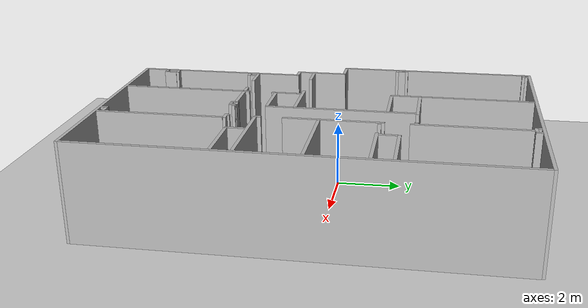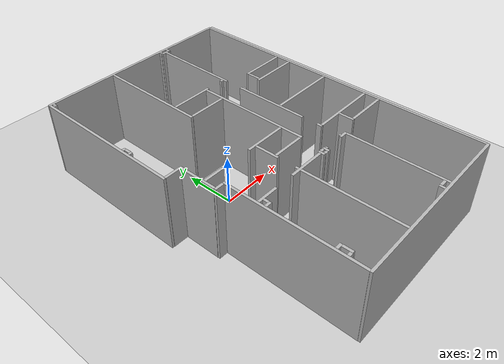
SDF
<sdf version="1.6">
 <world name="default">
  <light name="sun" type="directional">
   <pose>0 0 10 0 -0 0</pose>
   <diffuse>0.8 0.8 0.8 1</diffuse>
   <specular>0.2 0.2 0.2 1</specular>
   <attenuation>
    <range>1000</range>
    <constant>0.9</constant>
    <linear>0.01</linear>
    <quadratic>0.001</quadratic>
   </attenuation>
   <direction>-0.5 0.1 -0.9</direction>
  </light>
  <model name="ground_plane">
   <static>1</static>
   <link name="link">
    <collision name="collision">
     <geometry><plane><normal>0 0 1</normal><size>100 100</size></plane></geometry>
     <surface><friction><ode><mu>100</mu><mu2>50</mu2></ode></friction></surface>
    </collision>
    <visual name="visual">
     <cast_shadows>0</cast_shadows>
     <geometry><plane><normal>0 0 1</normal><size>100 100</size></plane></geometry>
     <material>
      <script><uri>file://media/materials/scripts/gazebo.material</uri><name>Gazebo/Grey</name></script>
     </material>
    </visual>
    <velocity_decay><linear>0</linear><angular>0</angular></velocity_decay>
   </link>
  </model>
  <include><uri>model://complete_mp_model</uri><pose>0 6 0 0 0 0</pose></include>
  <physics name="default_physics" default="0" type="ode">
   <max_step_size>0.01</max_step_size>
   <real_time_factor>1</real_time_factor>
   <real_time_update_rate>100</real_time_update_rate>
  </physics>
  <scene><ambient>0.4 0.4 0.4 1</ambient><background>0.7 0.7 0.7 1</background><shadows>1</shadows></scene>
  <gravity>0 0 -9.8</gravity>
  <magnetic_field>6e-06 2.3e-05 -4.2e-05</magnetic_field>
  <atmosphere type="adiabatic"/>
  <spherical_coordinates>
   <surface_model>EARTH_WGS84</surface_model>
   <latitude_deg>0</latitude_deg>
   <longitude_deg>0</longitude_deg>
   <elevation>0</elevation>
   <heading_deg>0</heading_deg>
  </spherical_coordinates>
 </world>
</sdf>

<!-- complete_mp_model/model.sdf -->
<sdf version='1.6'>
  <model name='complete_mp_model'>
    <link name='building_footprint'>
      <pose frame=''>0 0 0 0 -0 0</pose>
      <inertial>
        <pose frame=''>1.12721 -5.42171 0.338508 0 -0 0</pose>
        <mass>244</mass>
        <inertia>
          <ixx>1142.81</ixx>
          <ixy>-243.459</ixy>
          <ixz>23.0829</ixz>
          <iyy>742.682</iyy>
          <iyz>104.008</iyz>
          <izz>1644.27</izz>
        </inertia>
      </inertial>
      <collision name='building_footprint_fixed_joint_lump__Wall_0_Collision_collision'>
        <pose frame=''>-0.032085 -2.20086 1.524 0 0 -1.5708</pose>
        <geometry>
          <box>
            <size>4.36829 0.1015 3.048</size>
          </box>
        </geometry>
      </collision>
      <collision name='building_footprint_fixed_joint_lump__Wall_10_Collision_collision_1'>
        <pose frame=''>1.73042 -12.8567 1.524 0 -0 3.14159</pose>
        <geometry>
          <box>
            <size>7.155 0.1015 3.048</size>
          </box>
        </geometry>
      </collision>
      <collision name='building_footprint_fixed_joint_lump__Wall_11_Collision_collision_2'>
        <pose frame=''>-2.86708 -3.07444 1.524 0 0 -1.5708</pose>
        <geometry>
          <box>
            <size>6.11546 0.1015 3.048</size>
          </box>
        </geometry>
      </collision>
      <collision name='building_footprint_fixed_joint_lump__Wall_12_Collision_collision_3'>
        <pose frame=''>2.67107 -0.121714 1.524 0 0 -1.5708</pose>
        <geometry>
          <box>
            <size>0.21 0.1015 3.048</size>
          </box>
        </geometry>
      </collision>
      <collision name='building_footprint_fixed_joint_lump__Wall_13_Collision_collision_4'>
        <pose frame=''>-2.02697 -7.61717 1.524 0 -0 3.14159</pose>
        <geometry>
          <box>
            <size>0.36 0.1015 3.048</size>
          </box>
        </geometry>
      </collision>
      <collision name='building_footprint_fixed_joint_lump__Wall_14_Collision_collision_5'>
        <pose frame=''>-2.16697 -6.81467 1.524 0 -0 1.5708</pose>
        <geometry>
          <box>
            <size>1.525 0.1015 3.048</size>
          </box>
        </geometry>
      </collision>
      <collision name='building_footprint_fixed_joint_lump__Wall_15_Collision_collision_6'>
        <pose frame=''>-2.51703 -6.09217 1.524 0 -0 3.14159</pose>
        <geometry>
          <box>
            <size>0.620118 0.1015 3.048</size>
          </box>
        </geometry>
      </collision>
      <collision name='building_footprint_fixed_joint_lump__Wall_16_Collision_collision_7'>
        <pose frame=''>-1.72697 -7.10717 1.524 0 -0 0</pose>
        <geometry>
          <box>
            <size>0.8 0.1015 3.048</size>
          </box>
        </geometry>
      </collision>
      <collision name='building_footprint_fixed_joint_lump__Wall_17_Collision_collision_8'>
        <pose frame=''>0.708089 -7.10814 1.524 0 -0 0</pose>
        <geometry>
          <box>
            <size>1.6314 0.1015 3.048</size>
          </box>
        </geometry>
      </collision>
      <collision name='building_footprint_fixed_joint_lump__Wall_18_Collision_collision_9'>
        <pose frame=''>0.203786 -7.61814 1.524 0 0 -1.5708</pose>
        <geometry>
          <box>
            <size>0.94 0.1015 3.048</size>
          </box>
        </geometry>
      </collision>
      <collision name='building_footprint_fixed_joint_lump__Wall_19_Collision_collision_10'>
        <pose frame=''>0.883786 -7.95418 1.524 0 -0 3.14159</pose>
        <geometry>
          <box>
            <size>1.28 0.1015 3.048</size>
          </box>
        </geometry>
      </collision>
      <collision name='building_footprint_fixed_joint_lump__Wall_1_Collision_collision_11'>
        <pose frame=''>-1.80697 -10.1969 1.524 0 -0 1.5708</pose>
        <geometry>
          <box>
            <size>5.23954 0.1015 3.048</size>
          </box>
        </geometry>
      </collision>
      <collision name='building_footprint_fixed_joint_lump__Wall_20_Collision_collision_12'>
        <pose frame=''>2.51258 -5.82869 1.524 0 0 -1.5708</pose>
        <geometry>
          <box>
            <size>2.94 0.1015 3.048</size>
          </box>
        </geometry>
      </collision>
      <collision name='building_footprint_fixed_joint_lump__Wall_21_Collision_collision_13'>
        <pose frame=''>3.89025 -6.23869 1.524 0 -0 3.14159</pose>
        <geometry>
          <box>
            <size>2.67534 0.1015 3.048</size>
          </box>
        </geometry>
      </collision>
      <collision name='building_footprint_fixed_joint_lump__Wall_22_Collision_collision_14'>
        <pose frame=''>2.59508 -4.50369 1.524 0 -0 0</pose>
        <geometry>
          <box>
            <size>0.085 0.1015 3.048</size>
          </box>
        </geometry>
      </collision>
      <collision name='building_footprint_fixed_joint_lump__Wall_23_Collision_collision_15'>
        <pose frame=''>4.29108 -4.50455 1.524 0 -0 0</pose>
        <geometry>
          <box>
            <size>1.87367 0.1015 3.048</size>
          </box>
        </geometry>
      </collision>
      <collision name='building_footprint_fixed_joint_lump__Wall_24_Collision_collision_16'>
        <pose frame=''>4.33025 -3.885 1.524 0 -0 3.14159</pose>
        <geometry>
          <box>
            <size>1.79534 0.1015 3.048</size>
          </box>
        </geometry>
      </collision>
      <collision name='building_footprint_fixed_joint_lump__Wall_25_Collision_collision_17'>
        <pose frame=''>3.47258 -4.19478 1.524 0 0 -1.5708</pose>
        <geometry>
          <box>
            <size>0.539551 0.1015 3.048</size>
          </box>
        </geometry>
      </collision>
      <collision name='building_footprint_fixed_joint_lump__Wall_26_Collision_collision_18'>
        <pose frame=''>3.89302 -8.08548 1.524 0 -0 0</pose>
        <geometry>
          <box>
            <size>2.66978 0.1015 3.048</size>
          </box>
        </geometry>
      </collision>
      <collision name='building_footprint_fixed_joint_lump__Wall_27_Collision_collision_19'>
        <pose frame=''>2.51813 -8.02094 1.524 0 0 -1.5708</pose>
        <geometry>
          <box>
            <size>0.209072 0.1015 3.048</size>
          </box>
        </geometry>
      </collision>
      <collision name='building_footprint_fixed_joint_lump__Wall_28_Collision_collision_20'>
        <pose frame=''>3.54313 -8.42798 1.524 0 0 -1.5708</pose>
        <geometry>
          <box>
            <size>0.605 0.1015 3.048</size>
          </box>
        </geometry>
      </collision>
      <collision name='building_footprint_fixed_joint_lump__Wall_29_Collision_collision_21'>
        <pose frame=''>4.40552 -8.69048 1.524 0 -0 0</pose>
        <geometry>
          <box>
            <size>1.64478 0.1015 3.048</size>
          </box>
        </geometry>
      </collision>
      <collision name='building_footprint_fixed_joint_lump__Wall_2_Collision_collision_22'>
        <pose frame=''>0.765851 -4.345 1.524 0 -0 0</pose>
        <geometry>
          <box>
            <size>1.51587 0.1015 3.048</size>
          </box>
        </geometry>
      </collision>
      <collision name='building_footprint_fixed_joint_lump__Wall_30_Collision_collision_23'>
        <pose frame=''>-2.73708 -0.066714 1.524 0 0 -1.5708</pose>
        <geometry>
          <box>
            <size>0.1 0.1015 3.048</size>
          </box>
        </geometry>
      </collision>
      <collision name='building_footprint_fixed_joint_lump__Wall_31_Collision_collision_24'>
        <pose frame=''>-2.76208 -0.156714 1.524 0 -0 3.14159</pose>
        <geometry>
          <box>
            <size>0.13 0.1015 3.048</size>
          </box>
        </geometry>
      </collision>
      <collision name='building_footprint_fixed_joint_lump__Wall_32_Collision_collision_25'>
        <pose frame=''>-2.75708 -4.035 1.524 0 -0 0</pose>
        <geometry>
          <box>
            <size>0.14 0.1015 3.048</size>
          </box>
        </geometry>
      </collision>
      <collision name='building_footprint_fixed_joint_lump__Wall_33_Collision_collision_26'>
        <pose frame=''>-2.75708 -4.345 1.524 0 -0 0</pose>
        <geometry>
          <box>
            <size>0.14 0.1015 3.048</size>
          </box>
        </geometry>
      </collision>
      <collision name='building_footprint_fixed_joint_lump__Wall_34_Collision_collision_27'>
        <pose frame=''>-2.72708 -4.19 1.524 0 -0 1.5708</pose>
        <geometry>
          <box>
            <size>0.23 0.1015 3.048</size>
          </box>
        </geometry>
      </collision>
      <collision name='building_footprint_fixed_joint_lump__Wall_35_Collision_collision_28'>
        <pose frame=''>-1.34697 -8.95048 1.524 0 -0 0</pose>
        <geometry>
          <box>
            <size>0.84 0.1015 3.048</size>
          </box>
        </geometry>
      </collision>
      <collision name='building_footprint_fixed_joint_lump__Wall_36_Collision_collision_29'>
        <pose frame=''>-1.57197 -9.09048 1.524 0 0 -1.5708</pose>
        <geometry>
          <box>
            <size>0.2 0.1015 3.048</size>
          </box>
        </geometry>
      </collision>
      <collision name='building_footprint_fixed_joint_lump__Wall_37_Collision_collision_30'>
        <pose frame=''>-1.64947 -9.23048 1.524 0 -0 3.14159</pose>
        <geometry>
          <box>
            <size>0.235 0.1015 3.048</size>
          </box>
        </geometry>
      </collision>
      <collision name='building_footprint_fixed_joint_lump__Wall_38_Collision_collision_31'>
        <pose frame=''>0.542994 -8.96048 1.524 0 -0 0</pose>
        <geometry>
          <box>
            <size>1.45992 0.1015 3.048</size>
          </box>
        </geometry>
      </collision>
      <collision name='building_footprint_fixed_joint_lump__Wall_39_Collision_collision_32'>
        <pose frame=''>0.201972 -10.8063 1.524 0 0 -1.5708</pose>
        <geometry>
          <box>
            <size>4.02075 0.1015 3.048</size>
          </box>
        </geometry>
      </collision>
      <collision name='building_footprint_fixed_joint_lump__Wall_3_Collision_collision_33'>
        <pose frame=''>1.56379 -5.75418 1.524 0 0 -1.5708</pose>
        <geometry>
          <box>
            <size>4.48 0.1015 3.048</size>
          </box>
        </geometry>
      </collision>
      <collision name='building_footprint_fixed_joint_lump__Wall_40_Collision_collision_34'>
        <pose frame=''>1.31295 -8.99429 1.524 0 0 -1.5708</pose>
        <geometry>
          <box>
            <size>0.24 0.1015 3.048</size>
          </box>
        </geometry>
      </collision>
      <collision name='building_footprint_fixed_joint_lump__Wall_41_Collision_collision_35'>
        <pose frame=''>1.43545 -9.07429 1.524 0 -0 0</pose>
        <geometry>
          <box>
            <size>0.165 0.1015 3.048</size>
          </box>
        </geometry>
      </collision>
      <collision name='building_footprint_fixed_joint_lump__Wall_42_Collision_collision_36'>
        <pose frame=''>1.43545 -8.91429 1.524 0 -0 0</pose>
        <geometry>
          <box>
            <size>0.165 0.1015 3.048</size>
          </box>
        </geometry>
      </collision>
      <collision name='building_footprint_fixed_joint_lump__Wall_43_Collision_collision_37'>
        <pose frame=''>1.55795 -8.99429 1.524 0 -0 1.5708</pose>
        <geometry>
          <box>
            <size>0.24 0.1015 3.048</size>
          </box>
        </geometry>
      </collision>
      <collision name='building_footprint_fixed_joint_lump__Wall_44_Collision_collision_38'>
        <pose frame=''>1.64045 -8.95429 1.524 0 -0 0</pose>
        <geometry>
          <box>
            <size>0.085 0.1015 3.048</size>
          </box>
        </geometry>
      </collision>
      <collision name='building_footprint_fixed_joint_lump__Wall_45_Collision_collision_39'>
        <pose frame=''>2.58795 -8.95429 1.524 0 -0 0</pose>
        <geometry>
          <box>
            <size>0.34 0.1015 3.048</size>
          </box>
        </geometry>
      </collision>
      <collision name='building_footprint_fixed_joint_lump__Wall_46_Collision_collision_40'>
        <pose frame=''>2.51765 -8.87871 1.524 0 0 -1.5708</pose>
        <geometry>
          <box>
            <size>0.071155 0.1015 3.048</size>
          </box>
        </geometry>
      </collision>
      <collision name='building_footprint_fixed_joint_lump__Wall_47_Collision_collision_41'>
        <pose frame=''>2.71765 -10.9055 1.524 0 0 -1.5708</pose>
        <geometry>
          <box>
            <size>3.82243 0.1015 3.048</size>
          </box>
        </geometry>
      </collision>
      <collision name='building_footprint_fixed_joint_lump__Wall_48_Collision_collision_42'>
        <pose frame=''>2.36067 -12.7051 1.524 0 0 -1.5708</pose>
        <geometry>
          <box>
            <size>0.22317 0.1015 3.048</size>
          </box>
        </geometry>
      </collision>
      <collision name='building_footprint_fixed_joint_lump__Wall_49_Collision_collision_43'>
        <pose frame=''>2.53916 -12.6335 1.524 0 -0 0</pose>
        <geometry>
          <box>
            <size>0.276981 0.1015 3.048</size>
          </box>
        </geometry>
      </collision>
      <collision name='building_footprint_fixed_joint_lump__Wall_4_Collision_collision_44'>
        <pose frame=''>2.41107 -3.47418 1.524 0 -0 0</pose>
        <geometry>
          <box>
            <size>0.12 0.1015 3.048</size>
          </box>
        </geometry>
      </collision>
      <collision name='building_footprint_fixed_joint_lump__Wall_50_Collision_collision_45'>
        <pose frame=''>-1.64697 -11.7135 1.524 0 -0 0</pose>
        <geometry>
          <box>
            <size>0.24 0.1015 3.048</size>
          </box>
        </geometry>
      </collision>
      <collision name='building_footprint_fixed_joint_lump__Wall_51_Collision_collision_46'>
        <pose frame=''>-1.56697 -11.9485 1.524 0 0 -1.5708</pose>
        <geometry>
          <box>
            <size>0.39 0.1015 3.048</size>
          </box>
        </geometry>
      </collision>
      <collision name='building_footprint_fixed_joint_lump__Wall_52_Collision_collision_47'>
        <pose frame=''>-1.68697 -12.1035 1.524 0 -0 3.14159</pose>
        <geometry>
          <box>
            <size>0.16 0.1015 3.048</size>
          </box>
        </geometry>
      </collision>
      <collision name='building_footprint_fixed_joint_lump__Wall_54_Collision_collision_48'>
        <pose frame=''>0.844493 -3.47418 1.524 0 -0 0</pose>
        <geometry>
          <box>
            <size>1.67315 0.1015 3.048</size>
          </box>
        </geometry>
      </collision>
      <collision name='building_footprint_fixed_joint_lump__Wall_5_Collision_collision_49'>
        <pose frame=''>2.51107 -1.93921 1.524 0 0 -1.5708</pose>
        <geometry>
          <box>
            <size>3.425 0.1015 3.048</size>
          </box>
        </geometry>
      </collision>
      <collision name='building_footprint_fixed_joint_lump__Wall_6_Collision_collision_50'>
        <pose frame=''>2.47357 -0.186714 1.524 0 -0 3.14159</pose>
        <geometry>
          <box>
            <size>0.315 0.1015 3.048</size>
          </box>
        </geometry>
      </collision>
      <collision name='building_footprint_fixed_joint_lump__Wall_7_Collision_collision_51'>
        <pose frame=''>2.35607 -0.081714 1.524 0 -0 1.5708</pose>
        <geometry>
          <box>
            <size>0.13 0.1015 3.048</size>
          </box>
        </geometry>
      </collision>
      <collision name='building_footprint_fixed_joint_lump__Wall_8_Collision_collision_52'>
        <pose frame=''>1.20042 0.023286 1.524 0 -0 0</pose>
        <geometry>
          <box>
            <size>8.215 0.1015 3.048</size>
          </box>
        </geometry>
      </collision>
      <collision name='building_footprint_fixed_joint_lump__Wall_9_Collision_collision_53'>
        <pose frame=''>5.26792 -6.41671 1.524 0 0 -1.5708</pose>
        <geometry>
          <box>
            <size>12.8 0.1015 3.048</size>
          </box>
        </geometry>
      </collision>
      <visual name='building_footprint_fixed_joint_lump__Wall_0_Visual_visual'>
        <pose frame=''>-0.032085 -2.20086 1.524 0 0 -1.5708</pose>
        <geometry>
          <box>
            <size>4.36829 0.1015 3.048</size>
          </box>
        </geometry>
      </visual>
      <visual name='building_footprint_fixed_joint_lump__Wall_10_Visual_visual_1'>
        <pose frame=''>1.73042 -12.8567 1.524 0 -0 3.14159</pose>
        <geometry>
          <box>
            <size>7.155 0.1015 3.048</size>
          </box>
        </geometry>
      </visual>
      <visual name='building_footprint_fixed_joint_lump__Wall_11_Visual_visual_2'>
        <pose frame=''>-2.86708 -3.07444 1.524 0 0 -1.5708</pose>
        <geometry>
          <box>
            <size>6.11546 0.1015 3.048</size>
          </box>
        </geometry>
      </visual>
      <visual name='building_footprint_fixed_joint_lump__Wall_12_Visual_visual_3'>
        <pose frame=''>2.67107 -0.121714 1.524 0 0 -1.5708</pose>
        <geometry>
          <box>
            <size>0.21 0.1015 3.048</size>
          </box>
        </geometry>
      </visual>
      <visual name='building_footprint_fixed_joint_lump__Wall_13_Visual_visual_4'>
        <pose frame=''>-2.02697 -7.61717 1.524 0 -0 3.14159</pose>
        <geometry>
          <box>
            <size>0.36 0.1015 3.048</size>
          </box>
        </geometry>
      </visual>
      <visual name='building_footprint_fixed_joint_lump__Wall_14_Visual_visual_5'>
        <pose frame=''>-2.16697 -6.81467 1.524 0 -0 1.5708</pose>
        <geometry>
          <box>
            <size>1.525 0.1015 3.048</size>
          </box>
        </geometry>
      </visual>
      <visual name='building_footprint_fixed_joint_lump__Wall_15_Visual_visual_6'>
        <pose frame=''>-2.51703 -6.09217 1.524 0 -0 3.14159</pose>
        <geometry>
          <box>
            <size>0.620118 0.1015 3.048</size>
          </box>
        </geometry>
      </visual>
      <visual name='building_footprint_fixed_joint_lump__Wall_16_Visual_visual_7'>
        <pose frame=''>-1.72697 -7.10717 1.524 0 -0 0</pose>
        <geometry>
          <box>
            <size>0.8 0.1015 3.048</size>
          </box>
        </geometry>
      </visual>
      <visual name='building_footprint_fixed_joint_lump__Wall_17_Visual_visual_8'>
        <pose frame=''>0.708089 -7.10814 1.524 0 -0 0</pose>
        <geometry>
          <box>
            <size>1.6314 0.1015 3.048</size>
          </box>
        </geometry>
      </visual>
      <visual name='building_footprint_fixed_joint_lump__Wall_18_Visual_visual_9'>
        <pose frame=''>0.203786 -7.61814 1.524 0 0 -1.5708</pose>
        <geometry>
          <box>
            <size>0.94 0.1015 3.048</size>
          </box>
        </geometry>
      </visual>
      <visual name='building_footprint_fixed_joint_lump__Wall_19_Visual_visual_10'>
        <pose frame=''>0.883786 -7.95418 1.524 0 -0 3.14159</pose>
        <geometry>
          <box>
            <size>1.28 0.1015 3.048</size>
          </box>
        </geometry>
      </visual>
      <visual name='building_footprint_fixed_joint_lump__Wall_1_Visual_visual_11'>
        <pose frame=''>-1.80697 -10.1969 1.524 0 -0 1.5708</pose>
        <geometry>
          <box>
            <size>5.23954 0.1015 3.048</size>
          </box>
        </geometry>
      </visual>
      <visual name='building_footprint_fixed_joint_lump__Wall_20_Visual_visual_12'>
        <pose frame=''>2.51258 -5.82869 1.524 0 0 -1.5708</pose>
        <geometry>
          <box>
            <size>2.94 0.1015 3.048</size>
          </box>
        </geometry>
      </visual>
      <visual name='building_footprint_fixed_joint_lump__Wall_21_Visual_visual_13'>
        <pose frame=''>3.89025 -6.23869 1.524 0 -0 3.14159</pose>
        <geometry>
          <box>
            <size>2.67534 0.1015 3.048</size>
          </box>
        </geometry>
      </visual>
      <visual name='building_footprint_fixed_joint_lump__Wall_22_Visual_visual_14'>
        <pose frame=''>2.59508 -4.50369 1.524 0 -0 0</pose>
        <geometry>
          <box>
            <size>0.085 0.1015 3.048</size>
          </box>
        </geometry>
      </visual>
      <visual name='building_footprint_fixed_joint_lump__Wall_23_Visual_visual_15'>
        <pose frame=''>4.29108 -4.50455 1.524 0 -0 0</pose>
        <geometry>
          <box>
            <size>1.87367 0.1015 3.048</size>
          </box>
        </geometry>
      </visual>
      <visual name='building_footprint_fixed_joint_lump__Wall_24_Visual_visual_16'>
        <pose frame=''>4.33025 -3.885 1.524 0 -0 3.14159</pose>
        <geometry>
          <box>
            <size>1.79534 0.1015 3.048</size>
          </box>
        </geometry>
      </visual>
      <visual name='building_footprint_fixed_joint_lump__Wall_25_Visual_visual_17'>
        <pose frame=''>3.47258 -4.19478 1.524 0 0 -1.5708</pose>
        <geometry>
          <box>
            <size>0.539551 0.1015 3.048</size>
          </box>
        </geometry>
      </visual>
      <visual name='building_footprint_fixed_joint_lump__Wall_26_Visual_visual_18'>
        <pose frame=''>3.89302 -8.08548 1.524 0 -0 0</pose>
        <geometry>
          <box>
            <size>2.66978 0.1015 3.048</size>
          </box>
        </geometry>
      </visual>
      <visual name='building_footprint_fixed_joint_lump__Wall_27_Visual_visual_19'>
        <pose frame=''>2.51813 -8.02094 1.524 0 0 -1.5708</pose>
        <geometry>
          <box>
            <size>0.209072 0.1015 3.048</size>
          </box>
        </geometry>
      </visual>
      <visual name='building_footprint_fixed_joint_lump__Wall_28_Visual_visual_20'>
        <pose frame=''>3.54313 -8.42798 1.524 0 0 -1.5708</pose>
        <geometry>
          <box>
            <size>0.605 0.1015 3.048</size>
          </box>
        </geometry>
      </visual>
      <visual name='building_footprint_fixed_joint_lump__Wall_29_Visual_visual_21'>
        <pose frame=''>4.40552 -8.69048 1.524 0 -0 0</pose>
        <geometry>
          <box>
            <size>1.64478 0.1015 3.048</size>
          </box>
        </geometry>
      </visual>
      <visual name='building_footprint_fixed_joint_lump__Wall_2_Visual_visual_22'>
        <pose frame=''>0.765851 -4.345 1.524 0 -0 0</pose>
        <geometry>
          <box>
            <size>1.51587 0.1015 3.048</size>
          </box>
        </geometry>
      </visual>
      <visual name='building_footprint_fixed_joint_lump__Wall_30_Visual_visual_23'>
        <pose frame=''>-2.73708 -0.066714 1.524 0 0 -1.5708</pose>
        <geometry>
          <box>
            <size>0.1 0.1015 3.048</size>
          </box>
        </geometry>
      </visual>
      <visual name='building_footprint_fixed_joint_lump__Wall_31_Visual_visual_24'>
        <pose frame=''>-2.76208 -0.156714 1.524 0 -0 3.14159</pose>
        <geometry>
          <box>
            <size>0.13 0.1015 3.048</size>
          </box>
        </geometry>
      </visual>
      <visual name='building_footprint_fixed_joint_lump__Wall_32_Visual_visual_25'>
        <pose frame=''>-2.75708 -4.035 1.524 0 -0 0</pose>
        <geometry>
          <box>
            <size>0.14 0.1015 3.048</size>
          </box>
        </geometry>
      </visual>
      <visual name='building_footprint_fixed_joint_lump__Wall_33_Visual_visual_26'>
        <pose frame=''>-2.75708 -4.345 1.524 0 -0 0</pose>
        <geometry>
          <box>
            <size>0.14 0.1015 3.048</size>
          </box>
        </geometry>
      </visual>
      <visual name='building_footprint_fixed_joint_lump__Wall_34_Visual_visual_27'>
        <pose frame=''>-2.72708 -4.19 1.524 0 -0 1.5708</pose>
        <geometry>
          <box>
            <size>0.23 0.1015 3.048</size>
          </box>
        </geometry>
      </visual>
      <visual name='building_footprint_fixed_joint_lump__Wall_35_Visual_visual_28'>
        <pose frame=''>-1.34697 -8.95048 1.524 0 -0 0</pose>
        <geometry>
          <box>
            <size>0.84 0.1015 3.048</size>
          </box>
        </geometry>
      </visual>
      <visual name='building_footprint_fixed_joint_lump__Wall_36_Visual_visual_29'>
        <pose frame=''>-1.57197 -9.09048 1.524 0 0 -1.5708</pose>
        <geometry>
          <box>
            <size>0.2 0.1015 3.048</size>
          </box>
        </geometry>
      </visual>
      <visual name='building_footprint_fixed_joint_lump__Wall_37_Visual_visual_30'>
        <pose frame=''>-1.64947 -9.23048 1.524 0 -0 3.14159</pose>
        <geometry>
          <box>
            <size>0.235 0.1015 3.048</size>
          </box>
        </geometry>
      </visual>
      <visual name='building_footprint_fixed_joint_lump__Wall_38_Visual_visual_31'>
        <pose frame=''>0.542994 -8.96048 1.524 0 -0 0</pose>
        <geometry>
          <box>
            <size>1.45992 0.1015 3.048</size>
          </box>
        </geometry>
      </visual>
      <visual name='building_footprint_fixed_joint_lump__Wall_39_Visual_visual_32'>
        <pose frame=''>0.201972 -10.8063 1.524 0 0 -1.5708</pose>
        <geometry>
          <box>
            <size>4.02075 0.1015 3.048</size>
          </box>
        </geometry>
      </visual>
      <visual name='building_footprint_fixed_joint_lump__Wall_3_Visual_visual_33'>
        <pose frame=''>1.56379 -5.75418 1.524 0 0 -1.5708</pose>
        <geometry>
          <box>
            <size>4.48 0.1015 3.048</size>
          </box>
        </geometry>
      </visual>
      <visual name='building_footprint_fixed_joint_lump__light_switch_1_faceplate_visual_34'>
        <pose frame=''>1.61479 -4.25418 1.75 0 0 -1.5708</pose>
        <geometry>
          <box>
            <size>0.1 0.001 0.2</size>
          </box>
        </geometry>
      </visual>
      <visual name='building_footprint_fixed_joint_lump__Wall_40_Visual_visual_35'>
        <pose frame=''>1.31295 -8.99429 1.524 0 0 -1.5708</pose>
        <geometry>
          <box>
            <size>0.24 0.1015 3.048</size>
          </box>
        </geometry>
      </visual>
      <visual name='building_footprint_fixed_joint_lump__Wall_41_Visual_visual_36'>
        <pose frame=''>1.43545 -9.07429 1.524 0 -0 0</pose>
        <geometry>
          <box>
            <size>0.165 0.1015 3.048</size>
          </box>
        </geometry>
      </visual>
      <visual name='building_footprint_fixed_joint_lump__Wall_42_Visual_visual_37'>
        <pose frame=''>1.43545 -8.91429 1.524 0 -0 0</pose>
        <geometry>
          <box>
            <size>0.165 0.1015 3.048</size>
          </box>
        </geometry>
      </visual>
      <visual name='building_footprint_fixed_joint_lump__Wall_43_Visual_visual_38'>
        <pose frame=''>1.55795 -8.99429 1.524 0 -0 1.5708</pose>
        <geometry>
          <box>
            <size>0.24 0.1015 3.048</size>
          </box>
        </geometry>
      </visual>
      <visual name='building_footprint_fixed_joint_lump__Wall_44_Visual_visual_39'>
        <pose frame=''>1.64045 -8.95429 1.524 0 -0 0</pose>
        <geometry>
          <box>
            <size>0.085 0.1015 3.048</size>
          </box>
        </geometry>
      </visual>
      <visual name='building_footprint_fixed_joint_lump__Wall_45_Visual_visual_40'>
        <pose frame=''>2.58795 -8.95429 1.524 0 -0 0</pose>
        <geometry>
          <box>
            <size>0.34 0.1015 3.048</size>
          </box>
        </geometry>
      </visual>
      <visual name='building_footprint_fixed_joint_lump__Wall_46_Visual_visual_41'>
        <pose frame=''>2.51765 -8.87871 1.524 0 0 -1.5708</pose>
        <geometry>
          <box>
            <size>0.071155 0.1015 3.048</size>
          </box>
        </geometry>
      </visual>
      <visual name='building_footprint_fixed_joint_lump__Wall_47_Visual_visual_42'>
        <pose frame=''>2.71765 -10.9055 1.524 0 0 -1.5708</pose>
        <geometry>
          <box>
            <size>3.82243 0.1015 3.048</size>
          </box>
        </geometry>
      </visual>
      <visual name='building_footprint_fixed_joint_lump__Wall_48_Visual_visual_43'>
        <pose frame=''>2.36067 -12.7051 1.524 0 0 -1.5708</pose>
        <geometry>
          <box>
            <size>0.22317 0.1015 3.048</size>
          </box>
        </geometry>
      </visual>
      <visual name='building_footprint_fixed_joint_lump__Wall_49_Visual_visual_44'>
        <pose frame=''>2.53916 -12.6335 1.524 0 -0 0</pose>
        <geometry>
          <box>
            <size>0.276981 0.1015 3.048</size>
          </box>
        </geometry>
      </visual>
      <visual name='building_footprint_fixed_joint_lump__Wall_4_Visual_visual_45'>
        <pose frame=''>2.41107 -3.47418 1.524 0 -0 0</pose>
        <geometry>
          <box>
            <size>0.12 0.1015 3.048</size>
          </box>
        </geometry>
      </visual>
      <visual name='building_footprint_fixed_joint_lump__Wall_50_Visual_visual_46'>
        <pose frame=''>-1.64697 -11.7135 1.524 0 -0 0</pose>
        <geometry>
          <box>
            <size>0.24 0.1015 3.048</size>
          </box>
        </geometry>
      </visual>
      <visual name='building_footprint_fixed_joint_lump__Wall_51_Visual_visual_47'>
        <pose frame=''>-1.56697 -11.9485 1.524 0 0 -1.5708</pose>
        <geometry>
          <box>
            <size>0.39 0.1015 3.048</size>
          </box>
        </geometry>
      </visual>
      <visual name='building_footprint_fixed_joint_lump__Wall_52_Visual_visual_48'>
        <pose frame=''>-1.68697 -12.1035 1.524 0 -0 3.14159</pose>
        <geometry>
          <box>
            <size>0.16 0.1015 3.048</size>
          </box>
        </geometry>
      </visual>
      <visual name='building_footprint_fixed_joint_lump__Wall_54_Visual_visual_49'>
        <pose frame=''>0.844493 -3.47418 1.524 0 -0 0</pose>
        <geometry>
          <box>
            <size>1.67315 0.1015 3.048</size>
          </box>
        </geometry>
      </visual>
      <visual name='building_footprint_fixed_joint_lump__Wall_5_Visual_visual_50'>
        <pose frame=''>2.51107 -1.93921 1.524 0 0 -1.5708</pose>
        <geometry>
          <box>
            <size>3.425 0.1015 3.048</size>
          </box>
        </geometry>
      </visual>
      <visual name='building_footprint_fixed_joint_lump__Wall_6_Visual_visual_51'>
        <pose frame=''>2.47357 -0.186714 1.524 0 -0 3.14159</pose>
        <geometry>
          <box>
            <size>0.315 0.1015 3.048</size>
          </box>
        </geometry>
      </visual>
      <visual name='building_footprint_fixed_joint_lump__Wall_7_Visual_visual_52'>
        <pose frame=''>2.35607 -0.081714 1.524 0 -0 1.5708</pose>
        <geometry>
          <box>
            <size>0.13 0.1015 3.048</size>
          </box>
        </geometry>
      </visual>
      <visual name='building_footprint_fixed_joint_lump__Wall_8_Visual_visual_53'>
        <pose frame=''>1.20042 0.023286 1.524 0 -0 0</pose>
        <geometry>
          <box>
            <size>8.215 0.1015 3.048</size>
          </box>
        </geometry>
      </visual>
      <visual name='building_footprint_fixed_joint_lump__Wall_9_Visual_visual_54'>
        <pose frame=''>5.26792 -6.41671 1.524 0 0 -1.5708</pose>
        <geometry>
          <box>
            <size>12.8 0.1015 3.048</size>
          </box>
        </geometry>
      </visual>
    </link>
    <static>0</static>
  </model>
</sdf>
